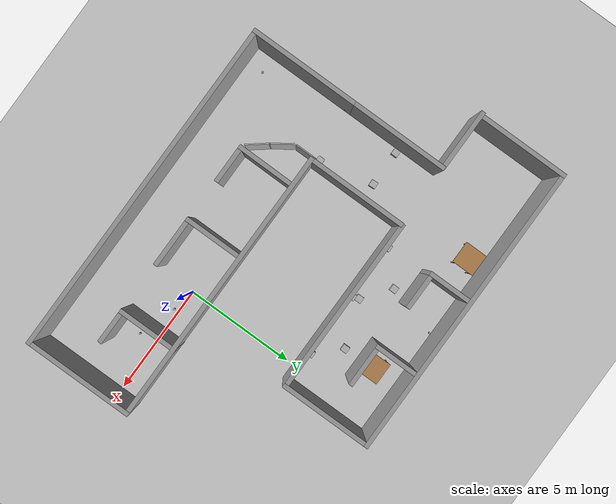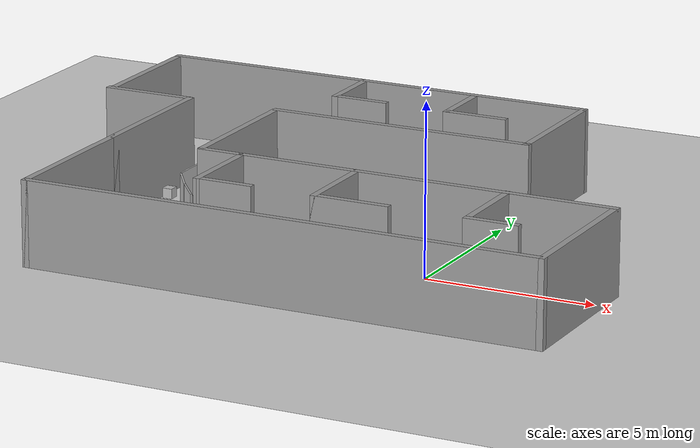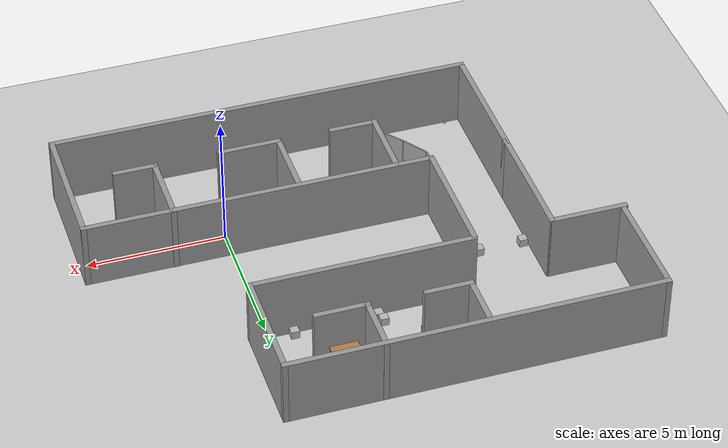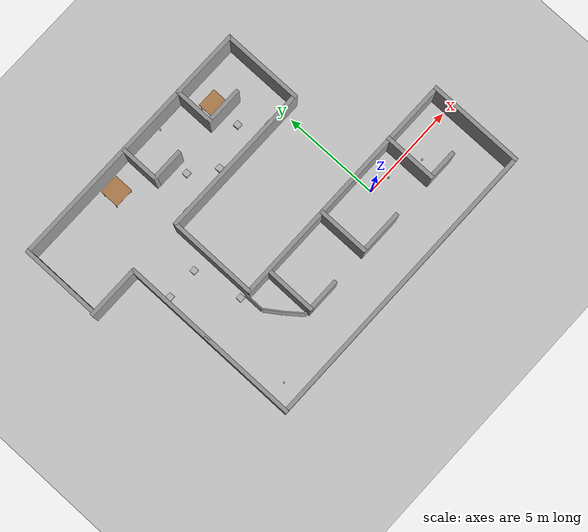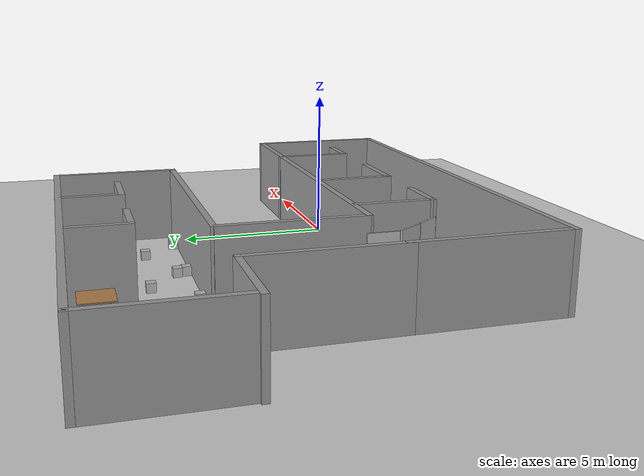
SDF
<sdf version="1.4">
 <world name="default">
  <physics type="ode">
   <gravity>0 0 -9.81</gravity>
   <ode>
    <solver><type>quick</type><iters>20</iters><sor>1</sor></solver>
    <constraints>
     <cfm>0</cfm>
     <erp>0.2</erp>
     <contact_max_correcting_vel>100</contact_max_correcting_vel>
     <contact_surface_layer>0</contact_surface_layer>
    </constraints>
   </ode>
   <real_time_update_rate>1000</real_time_update_rate>
   <max_step_size>0.001</max_step_size>
   <real_time_factor>1</real_time_factor>
  </physics>
  <light name="light1" type="directional">
   <pose>-2 0 4 0 -0 0</pose>
   <diffuse>1 1 1 1</diffuse>
   <specular>0.1 0.1 0.1 1</specular>
   <attenuation>
    <range>20</range>
    <constant>0.9</constant>
    <linear>0.01</linear>
    <quadratic>0.001</quadratic>
   </attenuation>
   <direction>0.2 0 -1</direction>
  </light>
  <model name="ground_plane">
   <static>1</static>
   <link name="link">
    <collision name="collision">
     <geometry><plane><normal>0 0 1</normal><size>100 100</size></plane></geometry>
     <surface><friction><ode><mu>100</mu><mu2>50</mu2></ode></friction></surface>
    </collision>
    <visual name="visual">
     <cast_shadows>0</cast_shadows>
     <geometry><plane><normal>0 0 1</normal><size>100 100</size></plane></geometry>
     <material>
      <script><uri>file://media/materials/scripts/gazebo.material</uri><name>Gazebo/Grey</name></script>
     </material>
    </visual>
    <velocity_decay><linear>0</linear><angular>0</angular></velocity_decay>
   </link>
  </model>
  <model name="building4">
   <pose>0.0604 0.08053 0 0 -0 0</pose>
   <link name="Wall_13">
    <collision name="Wall_13_Collision">
     <geometry><box><size>5.01 0.2 2.5</size></box></geometry>
     <pose>0 0 1.25 0 -0 0</pose>
    </collision>
    <visual name="Wall_13_Visual">
     <pose>0 0 1.25 0 -0 0</pose>
     <geometry><box><size>5.01 0.2 2.5</size></box></geometry>
     <material>
      <script><uri>file://media/materials/scripts/gazebo.material</uri><name>Gazebo/Grey</name></script>
     </material>
    </visual>
    <velocity_decay><linear>0</linear><angular>0</angular></velocity_decay>
    <pose>-10.233 -1.616 0 0 0 -1.5708</pose>
   </link>
   <link name="Wall_14">
    <collision name="Wall_14_Collision">
     <geometry><box><size>15.55 0.2 2.5</size></box></geometry>
     <pose>0 0 1.25 0 -0 0</pose>
    </collision>
    <visual name="Wall_14_Visual">
     <pose>0 0 1.25 0 -0 0</pose>
     <geometry><box><size>15.55 0.2 2.5</size></box></geometry>
     <material>
      <script><uri>file://media/materials/scripts/gazebo.material</uri><name>Gazebo/Grey</name></script>
     </material>
    </visual>
    <velocity_decay><linear>0</linear><angular>0</angular></velocity_decay>
    <pose>-2.55804 -4.02081 0 0 -0 2.5e-05</pose>
   </link>
   <link name="Wall_15">
    <collision name="Wall_15_Collision">
     <geometry><box><size>5.01 0.2 2.5</size></box></geometry>
     <pose>0 0 1.25 0 -0 0</pose>
    </collision>
    <visual name="Wall_15_Visual">
     <pose>0 0 1.25 0 -0 0</pose>
     <geometry><box><size>5.01 0.2 2.5</size></box></geometry>
     <material>
      <script><uri>file://media/materials/scripts/gazebo.material</uri><name>Gazebo/Grey</name></script>
     </material>
    </visual>
    <velocity_decay><linear>0</linear><angular>0</angular></velocity_decay>
    <pose>5.11693 -1.61562 0 0 -0 1.5708</pose>
   </link>
   <link name="Wall_16">
    <collision name="Wall_16_Collision">
     <geometry><box><size>12.72 0.2 2.5</size></box></geometry>
     <pose>0 0 1.25 0 -0 0</pose>
    </collision>
    <visual name="Wall_16_Visual">
     <pose>0 0 1.25 0 -0 0</pose>
     <geometry><box><size>12.72 0.2 2.5</size></box></geometry>
     <material>
      <script><uri>file://media/materials/scripts/gazebo.material</uri><name>Gazebo/Grey</name></script>
     </material>
    </visual>
    <velocity_decay><linear>0</linear><angular>0</angular></velocity_decay>
    <pose>-1.14308 0.789383 0 0 -0 3.14159</pose>
   </link>
   <link name="Wall_19">
    <collision name="Wall_19_Collision">
     <geometry><box><size>2.75243 0.2 2.5</size></box></geometry>
     <pose>0 0 1.25 0 -0 0</pose>
    </collision>
    <visual name="Wall_19_Visual">
     <pose>0 0 1.25 0 -0 0</pose>
     <geometry><box><size>2.75243 0.2 2.5</size></box></geometry>
     <material>
      <script><uri>file://media/materials/scripts/gazebo.material</uri><name>Gazebo/Grey</name></script>
     </material>
    </visual>
    <velocity_decay><linear>0</linear><angular>0</angular></velocity_decay>
    <pose>1.95298 -0.471453 0 0 0 -1.5708</pose>
   </link>
   <link name="Wall_20">
    <collision name="Wall_20_Collision">
     <geometry><box><size>1.61606 0.2 2.5</size></box></geometry>
     <pose>0 0 1.25 0 -0 0</pose>
    </collision>
    <visual name="Wall_20_Visual">
     <pose>0 0 1.25 0 -0 0</pose>
     <geometry><box><size>1.61606 0.2 2.5</size></box></geometry>
     <material>
      <script><uri>file://media/materials/scripts/gazebo.material</uri><name>Gazebo/Grey</name></script>
     </material>
    </visual>
    <velocity_decay><linear>0</linear><angular>0</angular></velocity_decay>
    <pose>2.66102 -1.74767 0 0 -0 0</pose>
   </link>
   <link name="Wall_22">
    <collision name="Wall_22_Collision">
     <geometry><box><size>2.69952 0.2 2.5</size></box></geometry>
     <pose>0 0 1.25 0 -0 0</pose>
    </collision>
    <visual name="Wall_22_Visual">
     <pose>0 0 1.25 0 -0 0</pose>
     <geometry><box><size>2.69952 0.2 2.5</size></box></geometry>
     <material>
      <script><uri>file://media/materials/scripts/gazebo.material</uri><name>Gazebo/Grey</name></script>
     </material>
    </visual>
    <velocity_decay><linear>0</linear><angular>0</angular></velocity_decay>
    <pose>-2.56997 -0.511128 0 0 0 -1.5708</pose>
   </link>
   <link name="Wall_23">
    <collision name="Wall_23_Collision">
     <geometry><box><size>2.34347 0.2 2.5</size></box></geometry>
     <pose>0 0 1.25 0 -0 0</pose>
    </collision>
    <visual name="Wall_23_Visual">
     <pose>0 0 1.25 0 -0 0</pose>
     <geometry><box><size>2.34347 0.2 2.5</size></box></geometry>
     <material>
      <script><uri>file://media/materials/scripts/gazebo.material</uri><name>Gazebo/Grey</name></script>
     </material>
    </visual>
    <velocity_decay><linear>0</linear><angular>0</angular></velocity_decay>
    <pose>-1.49823 -1.76089 0 0 -0 0</pose>
   </link>
   <link name="Wall_27">
    <collision name="Wall_27_Collision">
     <geometry><box><size>2.67304 0.2 2.5</size></box></geometry>
     <pose>0 0 1.25 0 -0 0</pose>
    </collision>
    <visual name="Wall_27_Visual">
     <pose>0 0 1.25 0 -0 0</pose>
     <geometry><box><size>2.67304 0.2 2.5</size></box></geometry>
     <material>
      <script><uri>file://media/materials/scripts/gazebo.material</uri><name>Gazebo/Grey</name></script>
     </material>
    </visual>
    <velocity_decay><linear>0</linear><angular>0</angular></velocity_decay>
    <pose>-6.134 -0.5245 0 0 0 -1.57646</pose>
   </link>
   <link name="Wall_28">
    <collision name="Wall_28_Collision">
     <geometry><box><size>1.78778 0.2 2.5</size></box></geometry>
     <pose>0 0 1.25 0 -0 0</pose>
    </collision>
    <visual name="Wall_28_Visual">
     <pose>0 0 1.25 0 -0 0</pose>
     <geometry><box><size>1.78778 0.2 2.5</size></box></geometry>
     <material>
      <script><uri>file://media/materials/scripts/gazebo.material</uri><name>Gazebo/Grey</name></script>
     </material>
    </visual>
    <velocity_decay><linear>0</linear><angular>0</angular></velocity_decay>
    <pose>-5.34711 -1.761 0 0 -0 0</pose>
   </link>
   <link name="Wall_30">
    <collision name="Wall_30_Collision">
     <geometry><box><size>4.722 0.2 2.5</size></box></geometry>
     <pose>0 0 1.25 0 -0 0</pose>
    </collision>
    <visual name="Wall_30_Visual">
     <pose>0 0 1.25 0 -0 0</pose>
     <geometry><box><size>4.722 0.2 2.5</size></box></geometry>
     <material>
      <script><uri>file://media/materials/scripts/gazebo.material</uri><name>Gazebo/Grey</name></script>
     </material>
    </visual>
    <velocity_decay><linear>0</linear><angular>0</angular></velocity_decay>
    <pose>-10.233 2.952 0 0 -0 1.5708</pose>
   </link>
   <link name="Wall_32">
    <collision name="Wall_32_Collision">
     <geometry><box><size>4.52699 0.2 2.5</size></box></geometry>
     <pose>0 0 1.25 0 -0 0</pose>
    </collision>
    <visual name="Wall_32_Visual">
     <pose>0 0 1.25 0 -0 0</pose>
     <geometry><box><size>4.52699 0.2 2.5</size></box></geometry>
     <material>
      <script><uri>file://media/materials/scripts/gazebo.material</uri><name>Gazebo/Grey</name></script>
     </material>
    </visual>
    <velocity_decay><linear>0</linear><angular>0</angular></velocity_decay>
    <pose>-7.41943 3.02427 0 0 -0 1.5708</pose>
   </link>
   <link name="Wall_35">
    <collision name="Wall_35_Collision">
     <geometry><box><size>2.80534 0.2 2.5</size></box></geometry>
     <pose>0 0 1.25 0 -0 0</pose>
    </collision>
    <visual name="Wall_35_Visual">
     <pose>0 0 1.25 0 -0 0</pose>
     <geometry><box><size>2.80534 0.2 2.5</size></box></geometry>
     <material>
      <script><uri>file://media/materials/scripts/gazebo.material</uri><name>Gazebo/Grey</name></script>
     </material>
    </visual>
    <velocity_decay><linear>0</linear><angular>0</angular></velocity_decay>
    <pose>-11.5868 5.23749 0 0 -0 3.14159</pose>
   </link>
   <link name="Wall_38">
    <collision name="Wall_38_Collision">
     <geometry><box><size>4.19003 0.2 2.5</size></box></geometry>
     <pose>0 0 1.25 0 -0 0</pose>
    </collision>
    <visual name="Wall_38_Visual">
     <pose>0 0 1.25 0 -0 0</pose>
     <geometry><box><size>4.19003 0.2 2.5</size></box></geometry>
     <material>
      <script><uri>file://media/materials/scripts/gazebo.material</uri><name>Gazebo/Grey</name></script>
     </material>
    </visual>
    <velocity_decay><linear>0</linear><angular>0</angular></velocity_decay>
    <pose>-12.8151 7.30342 0 0 -0 1.5708</pose>
   </link>
   <link name="Wall_39">
    <collision name="Wall_39_Collision">
     <geometry><box><size>13.5347 0.2 2.5</size></box></geometry>
     <pose>0 0 1.25 0 -0 0</pose>
    </collision>
    <visual name="Wall_39_Visual">
     <pose>0 0 1.25 0 -0 0</pose>
     <geometry><box><size>13.5347 0.2 2.5</size></box></geometry>
     <material>
      <script><uri>file://media/materials/scripts/gazebo.material</uri><name>Gazebo/Grey</name></script>
     </material>
    </visual>
    <velocity_decay><linear>0</linear><angular>0</angular></velocity_decay>
    <pose>-6.14777 9.29843 0 0 -0 0</pose>
   </link>
   <link name="Wall_40">
    <collision name="Wall_40_Collision">
     <geometry><box><size>4.21663 0.2 2.5</size></box></geometry>
     <pose>0 0 1.25 0 -0 0</pose>
    </collision>
    <visual name="Wall_40_Visual">
     <pose>0 0 1.25 0 -0 0</pose>
     <geometry><box><size>4.21663 0.2 2.5</size></box></geometry>
     <material>
      <script><uri>file://media/materials/scripts/gazebo.material</uri><name>Gazebo/Grey</name></script>
     </material>
    </visual>
    <velocity_decay><linear>0</linear><angular>0</angular></velocity_decay>
    <pose>0.51957 7.29012 0 0 0 -1.5708</pose>
   </link>
   <link name="Wall_41">
    <collision name="Wall_41_Collision">
     <geometry><box><size>8.1083 0.2 2.5</size></box></geometry>
     <pose>0 0 1.25 0 -0 0</pose>
    </collision>
    <visual name="Wall_41_Visual">
     <pose>0 0 1.25 0 -0 0</pose>
     <geometry><box><size>8.1083 0.2 2.5</size></box></geometry>
     <material>
      <script><uri>file://media/materials/scripts/gazebo.material</uri><name>Gazebo/Grey</name></script>
     </material>
    </visual>
    <velocity_decay><linear>0</linear><angular>0</angular></velocity_decay>
    <pose>-3.43455 5.2818 0 0 -0 3.14159</pose>
   </link>
   <link name="Wall_43">
    <collision name="Wall_43_Collision">
     <geometry><box><size>2.14297 0.2 2.5</size></box></geometry>
     <pose>0 0 1.25 0 -0 0</pose>
    </collision>
    <visual name="Wall_43_Visual">
     <pose>0 0 1.25 0 -0 0</pose>
     <geometry><box><size>2.14297 0.2 2.5</size></box></geometry>
     <material>
      <script><uri>file://media/materials/scripts/gazebo.material</uri><name>Gazebo/Grey</name></script>
     </material>
    </visual>
    <velocity_decay><linear>0</linear><angular>0</angular></velocity_decay>
    <pose>-2.91992 8.32953 0 0 0 -1.5708</pose>
   </link>
   <link name="Wall_44">
    <collision name="Wall_44_Collision">
     <geometry><box><size>1.98106 0.2 2.5</size></box></geometry>
     <pose>0 0 1.25 0 -0 0</pose>
    </collision>
    <visual name="Wall_44_Visual">
     <pose>0 0 1.25 0 -0 0</pose>
     <geometry><box><size>1.98106 0.2 2.5</size></box></geometry>
     <material>
      <script><uri>file://media/materials/scripts/gazebo.material</uri><name>Gazebo/Grey</name></script>
     </material>
    </visual>
    <velocity_decay><linear>0</linear><angular>0</angular></velocity_decay>
    <pose>-2.02939 7.35804 0 0 -0 0</pose>
   </link>
   <link name="Wall_54">
    <collision name="Wall_54_Collision">
     <geometry><box><size>2.03541 0.2 2.5</size></box></geometry>
     <pose>0 0 1.25 0 -0 0</pose>
    </collision>
    <visual name="Wall_54_Visual">
     <pose>0 0 1.25 0 -0 0</pose>
     <geometry><box><size>2.03541 0.2 2.5</size></box></geometry>
     <material>
      <script><uri>file://media/materials/scripts/gazebo.material</uri><name>Gazebo/Grey</name></script>
     </material>
    </visual>
    <velocity_decay><linear>0</linear><angular>0</angular></velocity_decay>
    <pose>-6.52977 8.31143 0 0 0 -1.5708</pose>
   </link>
   <link name="Wall_55">
    <collision name="Wall_55_Collision">
     <geometry><box><size>1.7601 0.2 2.5</size></box></geometry>
     <pose>0 0 1.25 0 -0 0</pose>
    </collision>
    <visual name="Wall_55_Visual">
     <pose>0 0 1.25 0 -0 0</pose>
     <geometry><box><size>1.7601 0.2 2.5</size></box></geometry>
     <material>
      <script><uri>file://media/materials/scripts/gazebo.material</uri><name>Gazebo/Grey</name></script>
     </material>
    </visual>
    <velocity_decay><linear>0</linear><angular>0</angular></velocity_decay>
    <pose>-5.74972 7.39373 0 0 -0 0</pose>
   </link>
   <static>1</static>
  </model>
  <scene><ambient>0.4 0.4 0.4 1</ambient><background>0.7 0.7 0.7 1</background><shadows>1</shadows></scene>
  <spherical_coordinates>
   <surface_model>EARTH_WGS84</surface_model>
   <latitude_deg>0</latitude_deg>
   <longitude_deg>0</longitude_deg>
   <elevation>0</elevation>
   <heading_deg>0</heading_deg>
  </spherical_coordinates>
  <model name="cocacola">
   <static>0</static>
   <link name="link">
    <inertial>
     <mass>0.25</mass>
     <inertia><ixx>0</ixx><ixy>0</ixy><ixz>0</ixz><iyy>0</iyy><iyz>0</iyz><izz>0</izz></inertia>
    </inertial>
    <collision name="collision">
     <pose>0 0 0.075 -3.14159 -0 0</pose>
     <geometry><cylinder><radius>0.04</radius><length>0.15</length></cylinder></geometry>
    </collision>
    <visual name="visual">
     <pose>0 0 0.075 -3.14159 -0 0</pose>
     <geometry><cylinder><radius>0.04</radius><length>0.15</length></cylinder></geometry>
     <material>
      <script>
       <uri>model://cocacola/material/scripts</uri>
       <uri>model://cocacola/material/textures</uri>
       <name>Custom/cocacola</name>
      </script>
     </material>
    </visual>
    <velocity_decay><linear>0</linear><angular>0</angular></velocity_decay>
   </link>
   <pose>2.68091 -0.744272 0.299999 9.5e-05 -0.000185 2.9e-05</pose>
  </model>
  <model name="cocacola_0">
   <static>0</static>
   <link name="link">
    <inertial>
     <mass>0.25</mass>
     <inertia><ixx>0</ixx><ixy>0</ixy><ixz>0</ixz><iyy>0</iyy><iyz>0</iyz><izz>0</izz></inertia>
    </inertial>
    <collision name="collision">
     <pose>0 0 0.075 -3.14159 -0 0</pose>
     <geometry><cylinder><radius>0.04</radius><length>0.15</length></cylinder></geometry>
    </collision>
    <visual name="visual">
     <pose>0 0 0.075 -3.14159 -0 0</pose>
     <geometry><cylinder><radius>0.04</radius><length>0.15</length></cylinder></geometry>
     <material>
      <script>
       <uri>model://cocacola/material/scripts</uri>
       <uri>model://cocacola/material/textures</uri>
       <name>Custom/cocacola</name>
      </script>
     </material>
    </visual>
    <velocity_decay><linear>0</linear><angular>0</angular></velocity_decay>
   </link>
   <pose>1 -0.177691 0.300008 4.4e-05 -0.000192 4e-06</pose>
  </model>
  <model name="cocacola_1">
   <static>0</static>
   <link name="link">
    <inertial>
     <mass>0.25</mass>
     <inertia><ixx>0</ixx><ixy>0</ixy><ixz>0</ixz><iyy>0</iyy><iyz>0</iyz><izz>0</izz></inertia>
    </inertial>
    <collision name="collision">
     <pose>0 0 0.075 -3.14159 -0 0</pose>
     <geometry><cylinder><radius>0.04</radius><length>0.15</length></cylinder></geometry>
    </collision>
    <visual name="visual">
     <pose>0 0 0.075 -3.14159 -0 0</pose>
     <geometry><cylinder><radius>0.04</radius><length>0.15</length></cylinder></geometry>
     <material>
      <script>
       <uri>model://cocacola/material/scripts</uri>
       <uri>model://cocacola/material/textures</uri>
       <name>Custom/cocacola</name>
      </script>
     </material>
    </visual>
    <velocity_decay><linear>0</linear><angular>0</angular></velocity_decay>
   </link>
   <pose>-9.25325 -3 0.660015 -0.000106 -0.000371 1e-05</pose>
  </model>
  <model name="table_1m">
   <static>1</static>
   <link name="link">
    <collision name="surface">
     <pose>0 0 1.01 0 -0 0</pose>
     <geometry><box><size>1 1.01 0.03</size></box></geometry>
    </collision>
    <visual name="visual1">
     <pose>0 0 1.01 0 -0 0</pose>
     <geometry><box><size>1 1.01 0.03</size></box></geometry>
     <material>
      <script><uri>file://media/materials/scripts/gazebo.material</uri><name>Gazebo/Wood</name></script>
     </material>
    </visual>
    <collision name="front_left_leg">
     <pose>0.48 0.38 0.5005 0 -0 0</pose>
     <geometry><cylinder><radius>0.02</radius><length>1.01</length></cylinder></geometry>
    </collision>
    <visual name="front_left_leg">
     <pose>0.48 0.38 0.5005 0 -0 0</pose>
     <geometry><cylinder><radius>0.02</radius><length>1.01</length></cylinder></geometry>
     <material>
      <script><uri>file://media/materials/scripts/gazebo.material</uri><name>Gazebo/Grey</name></script>
     </material>
    </visual>
    <collision name="front_right_leg">
     <pose>0.48 -0.38 0.5005 0 -0 0</pose>
     <geometry><cylinder><radius>0.02</radius><length>1.01</length></cylinder></geometry>
    </collision>
    <visual name="front_right_leg">
     <pose>0.48 -0.38 0.5005 0 -0 0</pose>
     <geometry><cylinder><radius>0.02</radius><length>1.01</length></cylinder></geometry>
     <material>
      <script><uri>file://media/materials/scripts/gazebo.material</uri><name>Gazebo/Grey</name></script>
     </material>
    </visual>
    <collision name="back_right_leg">
     <pose>-0.48 -0.38 0.5005 0 -0 0</pose>
     <geometry><cylinder><radius>0.02</radius><length>1.01</length></cylinder></geometry>
    </collision>
    <visual name="back_right_leg">
     <pose>-0.48 -0.38 0.5005 0 -0 0</pose>
     <geometry><cylinder><radius>0.02</radius><length>1.01</length></cylinder></geometry>
     <material>
      <script><uri>file://media/materials/scripts/gazebo.material</uri><name>Gazebo/Grey</name></script>
     </material>
    </visual>
    <collision name="back_left_leg">
     <pose>-0.48 0.38 0.5005 0 -0 0</pose>
     <geometry><cylinder><radius>0.02</radius><length>1.01</length></cylinder></geometry>
    </collision>
    <visual name="back_left_leg">
     <pose>-0.48 0.38 0.5005 0 -0 0</pose>
     <geometry><cylinder><radius>0.02</radius><length>1.01</length></cylinder></geometry>
     <material>
      <script><uri>file://media/materials/scripts/gazebo.material</uri><name>Gazebo/Grey</name></script>
     </material>
    </visual>
    <velocity_decay><linear>0</linear><angular>0</angular></velocity_decay>
   </link>
   <pose>-8 8.5652 0 0 -0 0</pose>
  </model>
  <model name="cocacola_3">
   <static>0</static>
   <link name="link">
    <inertial>
     <mass>0.25</mass>
     <inertia><ixx>0</ixx><ixy>0</ixy><ixz>0</ixz><iyy>0</iyy><iyz>0</iyz><izz>0</izz></inertia>
    </inertial>
    <collision name="collision">
     <pose>0 0 0.075 -3.14159 -0 0</pose>
     <geometry><cylinder><radius>0.04</radius><length>0.15</length></cylinder></geometry>
    </collision>
    <visual name="visual">
     <pose>0 0 0.075 -3.14159 -0 0</pose>
     <geometry><cylinder><radius>0.04</radius><length>0.15</length></cylinder></geometry>
     <material>
      <script>
       <uri>model://cocacola/material/scripts</uri>
       <uri>model://cocacola/material/textures</uri>
       <name>Custom/cocacola</name>
      </script>
     </material>
    </visual>
    <velocity_decay><linear>0</linear><angular>0</angular></velocity_decay>
   </link>
   <pose>-4.52272 9.0837 0.609999 4.5e-05 -0.000206 1.8e-05</pose>
  </model>
  <model name="table_1m_0">
   <static>1</static>
   <link name="link">
    <collision name="surface">
     <pose>0 0 1.01 0 -0 0</pose>
     <geometry><box><size>1 1.01 0.03</size></box></geometry>
    </collision>
    <visual name="visual1">
     <pose>0 0 1.01 0 -0 0</pose>
     <geometry><box><size>1 1.01 0.03</size></box></geometry>
     <material>
      <script><uri>file://media/materials/scripts/gazebo.material</uri><name>Gazebo/Wood</name></script>
     </material>
    </visual>
    <collision name="front_left_leg">
     <pose>0.48 0.38 0.5005 0 -0 0</pose>
     <geometry><cylinder><radius>0.02</radius><length>1.01</length></cylinder></geometry>
    </collision>
    <visual name="front_left_leg">
     <pose>0.48 0.38 0.5005 0 -0 0</pose>
     <geometry><cylinder><radius>0.02</radius><length>1.01</length></cylinder></geometry>
     <material>
      <script><uri>file://media/materials/scripts/gazebo.material</uri><name>Gazebo/Grey</name></script>
     </material>
    </visual>
    <collision name="front_right_leg">
     <pose>0.48 -0.38 0.5005 0 -0 0</pose>
     <geometry><cylinder><radius>0.02</radius><length>1.01</length></cylinder></geometry>
    </collision>
    <visual name="front_right_leg">
     <pose>0.48 -0.38 0.5005 0 -0 0</pose>
     <geometry><cylinder><radius>0.02</radius><length>1.01</length></cylinder></geometry>
     <material>
      <script><uri>file://media/materials/scripts/gazebo.material</uri><name>Gazebo/Grey</name></script>
     </material>
    </visual>
    <collision name="back_right_leg">
     <pose>-0.48 -0.38 0.5005 0 -0 0</pose>
     <geometry><cylinder><radius>0.02</radius><length>1.01</length></cylinder></geometry>
    </collision>
    <visual name="back_right_leg">
     <pose>-0.48 -0.38 0.5005 0 -0 0</pose>
     <geometry><cylinder><radius>0.02</radius><length>1.01</length></cylinder></geometry>
     <material>
      <script><uri>file://media/materials/scripts/gazebo.material</uri><name>Gazebo/Grey</name></script>
     </material>
    </visual>
    <collision name="back_left_leg">
     <pose>-0.48 0.38 0.5005 0 -0 0</pose>
     <geometry><cylinder><radius>0.02</radius><length>1.01</length></cylinder></geometry>
    </collision>
    <visual name="back_left_leg">
     <pose>-0.48 0.38 0.5005 0 -0 0</pose>
     <geometry><cylinder><radius>0.02</radius><length>1.01</length></cylinder></geometry>
     <material>
      <script><uri>file://media/materials/scripts/gazebo.material</uri><name>Gazebo/Grey</name></script>
     </material>
    </visual>
    <velocity_decay><linear>0</linear><angular>0</angular></velocity_decay>
   </link>
   <pose>-2 8 0 0 -0 0</pose>
  </model>
  <model name="box_12">
   <static>0</static>
   <link name="box">
    <pose>0 0 0.5 0 -0 0</pose>
    <collision name="collision"><geometry><box><size>0.3 0.3 0.3</size></box></geometry></collision>
    <visual name="visual">
     <geometry><box><size>0.3 0.3 0.3</size></box></geometry>
     <material>
      <script>
       <uri>model://box/material/scripts</uri>
       <uri>model://box/material/textures</uri>
       <name>Custom/box</name>
      </script>
     </material>
    </visual>
    <velocity_decay><linear>0</linear><angular>0</angular></velocity_decay>
    <inertial>
     <inertia><ixx>1</ixx><ixy>0</ixy><ixz>0</ixz><iyy>1</iyy><iyz>0</iyz><izz>1</izz></inertia>
     <mass>1</mass>
    </inertial>
   </link>
   <pose>-9.87533 3.51911 -0.35 -2e-06 -6.46235e-27 2.5e-05</pose>
  </model>
  <model name="box_14">
   <static>0</static>
   <link name="box">
    <pose>0 0 0.5 0 -0 0</pose>
    <collision name="collision"><geometry><box><size>0.3 0.3 0.3</size></box></geometry></collision>
    <visual name="visual">
     <geometry><box><size>0.3 0.3 0.3</size></box></geometry>
     <material>
      <script>
       <uri>model://box/material/scripts</uri>
       <uri>model://box/material/textures</uri>
       <name>Custom/box</name>
      </script>
     </material>
    </visual>
    <velocity_decay><linear>0</linear><angular>0</angular></velocity_decay>
    <inertial>
     <inertia><ixx>1</ixx><ixy>0</ixy><ixz>0</ixz><iyy>1</iyy><iyz>0</iyz><izz>1</izz></inertia>
     <mass>1</mass>
    </inertial>
   </link>
   <pose>-3.86063 5.61236 -0.349999 4e-06 -0 -7.3e-05</pose>
  </model>
  <model name="box_16">
   <static>0</static>
   <link name="box">
    <pose>0 0 0.5 0 -0 0</pose>
    <collision name="collision"><geometry><box><size>0.3 0.3 0.3</size></box></geometry></collision>
    <visual name="visual">
     <geometry><box><size>0.3 0.3 0.3</size></box></geometry>
     <material>
      <script>
       <uri>model://box/material/scripts</uri>
       <uri>model://box/material/textures</uri>
       <name>Custom/box</name>
      </script>
     </material>
    </visual>
    <velocity_decay><linear>0</linear><angular>0</angular></velocity_decay>
    <inertial>
     <inertia><ixx>1</ixx><ixy>0</ixy><ixz>0</ixz><iyy>1</iyy><iyz>0</iyz><izz>1</izz></inertia>
     <mass>1</mass>
    </inertial>
   </link>
   <pose>-6.4312 5.61261 -0.349999 -7e-06 -1e-06 -0.000343</pose>
  </model>
  <model name="box_17">
   <static>0</static>
   <link name="box">
    <pose>0 0 0.5 0 -0 0</pose>
    <collision name="collision"><geometry><box><size>0.3 0.3 0.3</size></box></geometry></collision>
    <visual name="visual">
     <geometry><box><size>0.3 0.3 0.3</size></box></geometry>
     <material>
      <script>
       <uri>model://box/material/scripts</uri>
       <uri>model://box/material/textures</uri>
       <name>Custom/box</name>
      </script>
     </material>
    </visual>
    <velocity_decay><linear>0</linear><angular>0</angular></velocity_decay>
    <inertial>
     <inertia><ixx>1</ixx><ixy>0</ixy><ixz>0</ixz><iyy>1</iyy><iyz>0</iyz><izz>1</izz></inertia>
     <mass>1</mass>
    </inertial>
   </link>
   <pose>-5.15721 6.86982 -0.349998 -2e-06 -9e-06 -0.000369</pose>
  </model>
  <model name="box_18">
   <static>0</static>
   <link name="box">
    <pose>0 0 0.5 0 -0 0</pose>
    <collision name="collision"><geometry><box><size>0.3 0.3 0.3</size></box></geometry></collision>
    <visual name="visual">
     <geometry><box><size>0.3 0.3 0.3</size></box></geometry>
     <material>
      <script>
       <uri>model://box/material/scripts</uri>
       <uri>model://box/material/textures</uri>
       <name>Custom/box</name>
      </script>
     </material>
    </visual>
    <velocity_decay><linear>0</linear><angular>0</angular></velocity_decay>
    <inertial>
     <inertia><ixx>1</ixx><ixy>0</ixy><ixz>0</ixz><iyy>1</iyy><iyz>0</iyz><izz>1</izz></inertia>
     <mass>1</mass>
    </inertial>
   </link>
   <pose>-8.24029 3.53323 -0.349999 2e-06 -8e-06 0.025535</pose>
  </model>
  <model name="box_10">
   <static>0</static>
   <link name="box">
    <pose>0 0 0.5 0 -0 0</pose>
    <collision name="collision"><geometry><box><size>0.3 0.3 0.3</size></box></geometry></collision>
    <visual name="visual">
     <geometry><box><size>0.3 0.3 0.3</size></box></geometry>
     <material>
      <script>
       <uri>model://box/material/scripts</uri>
       <uri>model://box/material/textures</uri>
       <name>Custom/box</name>
      </script>
     </material>
    </visual>
    <velocity_decay><linear>0</linear><angular>0</angular></velocity_decay>
    <inertial>
     <inertia><ixx>1</ixx><ixy>0</ixy><ixz>0</ixz><iyy>1</iyy><iyz>0</iyz><izz>1</izz></inertia>
     <mass>1</mass>
    </inertial>
   </link>
   <pose>-7.72173 1.10559 -0.35 1e-06 1e-06 -0.000469</pose>
  </model>
  <model name="box_4">
   <static>0</static>
   <link name="box">
    <pose>0 0 0.5 0 -0 0</pose>
    <collision name="collision"><geometry><box><size>0.3 0.3 0.3</size></box></geometry></collision>
    <visual name="visual">
     <geometry><box><size>0.3 0.3 0.3</size></box></geometry>
     <material>
      <script>
       <uri>model://box/material/scripts</uri>
       <uri>model://box/material/textures</uri>
       <name>Custom/box</name>
      </script>
     </material>
    </visual>
    <velocity_decay><linear>0</linear><angular>0</angular></velocity_decay>
    <inertial>
     <inertia><ixx>1</ixx><ixy>0</ixy><ixz>0</ixz><iyy>1</iyy><iyz>0</iyz><izz>1</izz></inertia>
     <mass>1</mass>
    </inertial>
   </link>
   <pose>-1.87825 6.67614 -0.349999 -4e-06 1.03398e-25 -0.000141</pose>
  </model>
  <model name="box_21">
   <static>0</static>
   <link name="box">
    <pose>0 0 0.5 0 -0 0</pose>
    <collision name="collision"><geometry><box><size>0.3 0.3 0.3</size></box></geometry></collision>
    <visual name="visual">
     <geometry><box><size>0.3 0.3 0.3</size></box></geometry>
     <material>
      <script>
       <uri>model://box/material/scripts</uri>
       <uri>model://box/material/textures</uri>
       <name>Custom/box</name>
      </script>
     </material>
    </visual>
    <velocity_decay><linear>0</linear><angular>0</angular></velocity_decay>
    <inertial>
     <inertia><ixx>1</ixx><ixy>0</ixy><ixz>0</ixz><iyy>1</iyy><iyz>0</iyz><izz>1</izz></inertia>
     <mass>1</mass>
    </inertial>
   </link>
   <pose>-0.8647 5.61233 -0.35 -3e-06 1e-06 -1.5e-05</pose>
  </model>
  <model name="box_15">
   <static>0</static>
   <link name="box">
    <pose>0 0 0.5 0 -0 0</pose>
    <collision name="collision"><geometry><box><size>0.3 0.3 0.3</size></box></geometry></collision>
    <visual name="visual">
     <geometry><box><size>0.3 0.3 0.3</size></box></geometry>
     <material>
      <script>
       <uri>model://box/material/scripts</uri>
       <uri>model://box/material/textures</uri>
       <name>Custom/box</name>
      </script>
     </material>
    </visual>
    <velocity_decay><linear>0</linear><angular>0</angular></velocity_decay>
    <inertial>
     <inertia><ixx>1</ixx><ixy>0</ixy><ixz>0</ixz><iyy>1</iyy><iyz>0</iyz><izz>1</izz></inertia>
     <mass>1</mass>
    </inertial>
   </link>
   <pose>-3.94756 5.91259 -0.35 -2e-06 8.27181e-25 0.001047</pose>
  </model>
  <model name="table">
   <link name="wallWithREEMphoto_body">
    <inertial>
     <mass>4</mass>
     <inertia><ixx>1</ixx><ixy>0</ixy><ixz>0</ixz><iyy>1</iyy><iyz>0</iyz><izz>1</izz></inertia>
    </inertial>
    <collision name="collision"><geometry><box><size>0.05 1 2</size></box></geometry></collision>
    <visual name="visual">
     <geometry><box><size>0.05 1 2</size></box></geometry>
     <material>
      <script>
       <uri>model://wall_with_reem_photo/material/scripts</uri>
       <uri>model://wall_with_reem_photo/material/textures</uri>
       <name>Custom/REEM_photo0</name>
      </script>
     </material>
    </visual>
    <velocity_decay><linear>0</linear><angular>0</angular></velocity_decay>
   </link>
   <pose>-6.5952 -1.30838 0.999999 2e-06 2e-06 0.673522</pose>
   <static>0</static>
  </model>
  <model name="table_0">
   <link name="wallWithREEMphoto_body">
    <inertial>
     <mass>4</mass>
     <inertia><ixx>1</ixx><ixy>0</ixy><ixz>0</ixz><iyy>1</iyy><iyz>0</iyz><izz>1</izz></inertia>
    </inertial>
    <collision name="collision"><geometry><box><size>0.05 1 2</size></box></geometry></collision>
    <visual name="visual">
     <geometry><box><size>0.05 1 2</size></box></geometry>
     <material>
      <script>
       <uri>model://wall_with_reem_photo/material/scripts</uri>
       <uri>model://wall_with_reem_photo/material/textures</uri>
       <name>Custom/REEM_photo0</name>
      </script>
     </material>
    </visual>
    <velocity_decay><linear>0</linear><angular>0</angular></velocity_decay>
   </link>
   <pose>-7.21604 -0.479494 1 -2e-06 3e-06 0.605402</pose>
   <static>0</static>
  </model>
  <model name="table_1">
   <link name="wallWithREEMphoto_body">
    <inertial>
     <mass>4</mass>
     <inertia><ixx>1</ixx><ixy>0</ixy><ixz>0</ixz><iyy>1</iyy><iyz>0</iyz><izz>1</izz></inertia>
    </inertial>
    <collision name="collision"><geometry><box><size>0.05 1 2</size></box></geometry></collision>
    <visual name="visual">
     <geometry><box><size>0.05 1 2</size></box></geometry>
     <material>
      <script>
       <uri>model://wall_with_reem_photo/material/scripts</uri>
       <uri>model://wall_with_reem_photo/material/textures</uri>
       <name>Custom/REEM_photo0</name>
      </script>
     </material>
    </visual>
    <velocity_decay><linear>0</linear><angular>0</angular></velocity_decay>
   </link>
   <pose>-7.51672 0.487295 1 -1e-06 -1.9e-05 -1.4e-05</pose>
   <static>0</static>
  </model>
 </world>
</sdf>
